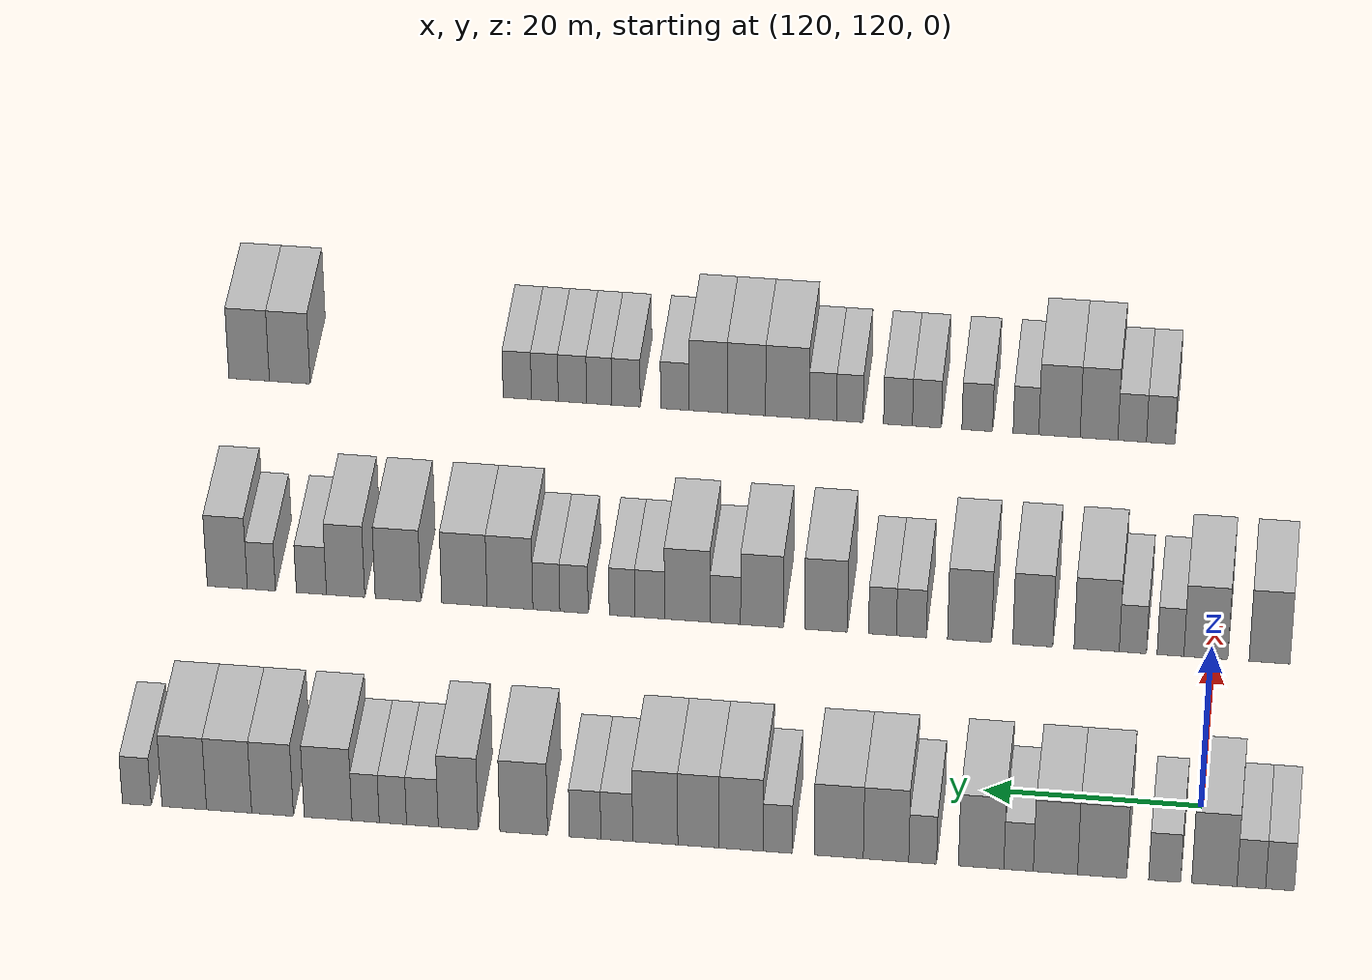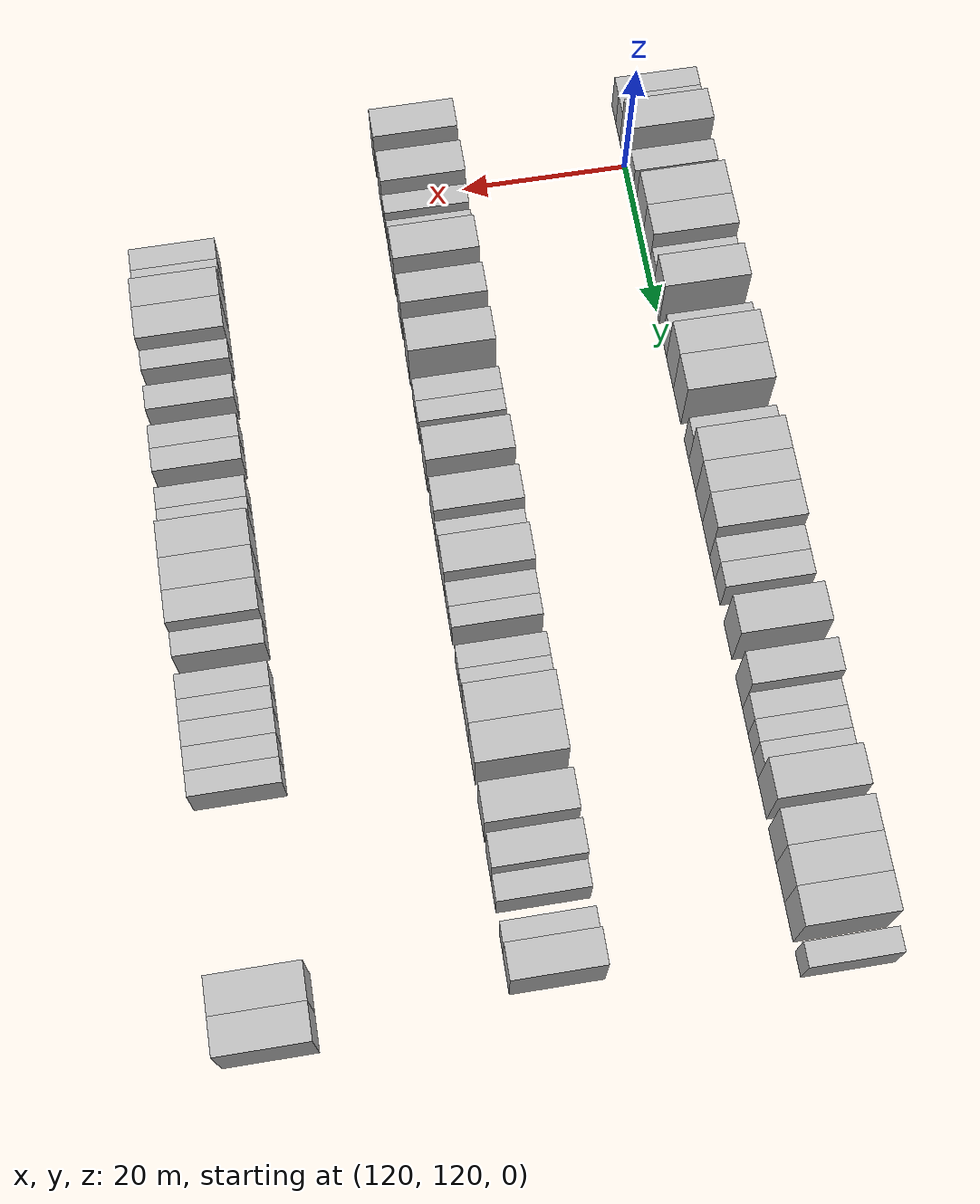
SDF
<sdf version="1.6">
 <world name="default">
  <model name="building_830">
   <static>1</static>
   <pose>115.0000 112.4151 0 0.000000 0.000000 0.000000</pose>
   <link name="link">
    <pose>0 0 3.00 0 0 0</pose>
    <collision name="collision"><geometry><box><size>10.0000 2.5968 6.0000</size></box></geometry></collision>
    <visual name="visual">
     <cast_shadows>0</cast_shadows>
     <geometry><box><size>10.0000 2.5968 6.0000</size></box></geometry>
     <material>
      <script>
       <uri>model://HANNAS_wall/materials/scripts</uri>
       <uri>model://HANNAS_wall/materials/textures</uri>
       <name>vrc/HANNAS_wall</name>
      </script>
     </material>
    </visual>
   </link>
  </model>
  <model name="building_831">
   <static>1</static>
   <pose>115.0000 115.0126 0 0.000000 0.000000 0.000000</pose>
   <link name="link">
    <pose>0 0 3.00 0 0 0</pose>
    <collision name="collision"><geometry><box><size>10.0000 2.5980 6.0000</size></box></geometry></collision>
    <visual name="visual">
     <cast_shadows>0</cast_shadows>
     <geometry><box><size>10.0000 2.5980 6.0000</size></box></geometry>
     <material>
      <script>
       <uri>model://HANNAS_wall/materials/scripts</uri>
       <uri>model://HANNAS_wall/materials/textures</uri>
       <name>vrc/HANNAS_wall</name>
      </script>
     </material>
    </visual>
   </link>
  </model>
  <model name="building_832">
   <static>1</static>
   <pose>115.0000 118.3584 0 0.000000 0.000000 0.000000</pose>
   <link name="link">
    <pose>0 0 4.50 0 0 0</pose>
    <collision name="collision"><geometry><box><size>10.0000 4.0936 9.0000</size></box></geometry></collision>
    <visual name="visual">
     <cast_shadows>0</cast_shadows>
     <geometry><box><size>10.0000 4.0936 9.0000</size></box></geometry>
     <material>
      <script>
       <uri>model://HANNAS_wall/materials/scripts</uri>
       <uri>model://HANNAS_wall/materials/textures</uri>
       <name>vrc/HANNAS_wall</name>
      </script>
     </material>
    </visual>
   </link>
  </model>
  <model name="building_833">
   <static>1</static>
   <pose>115.0000 122.8574 0 0.000000 0.000000 0.000000</pose>
   <link name="link">
    <pose>0 0 3.00 0 0 0</pose>
    <collision name="collision"><geometry><box><size>10.0000 2.9042 6.0000</size></box></geometry></collision>
    <visual name="visual">
     <cast_shadows>0</cast_shadows>
     <geometry><box><size>10.0000 2.9042 6.0000</size></box></geometry>
     <material>
      <script>
       <uri>model://HANNAS_wall/materials/scripts</uri>
       <uri>model://HANNAS_wall/materials/textures</uri>
       <name>vrc/HANNAS_wall</name>
      </script>
     </material>
    </visual>
   </link>
  </model>
  <model name="building_834">
   <static>1</static>
   <pose>115.0000 128.5365 0 0.000000 0.000000 0.000000</pose>
   <link name="link">
    <pose>0 0 4.50 0 0 0</pose>
    <collision name="collision"><geometry><box><size>10.0000 4.4541 9.0000</size></box></geometry></collision>
    <visual name="visual">
     <cast_shadows>0</cast_shadows>
     <geometry><box><size>10.0000 4.4541 9.0000</size></box></geometry>
     <material>
      <script>
       <uri>model://HANNAS_wall/materials/scripts</uri>
       <uri>model://HANNAS_wall/materials/textures</uri>
       <name>vrc/HANNAS_wall</name>
      </script>
     </material>
    </visual>
   </link>
  </model>
  <model name="building_835">
   <static>1</static>
   <pose>115.0000 132.7751 0 0.000000 0.000000 0.000000</pose>
   <link name="link">
    <pose>0 0 4.50 0 0 0</pose>
    <collision name="collision"><geometry><box><size>10.0000 4.0231 9.0000</size></box></geometry></collision>
    <visual name="visual">
     <cast_shadows>0</cast_shadows>
     <geometry><box><size>10.0000 4.0231 9.0000</size></box></geometry>
     <material>
      <script>
       <uri>model://HANNAS_wall/materials/scripts</uri>
       <uri>model://HANNAS_wall/materials/textures</uri>
       <name>vrc/HANNAS_wall</name>
      </script>
     </material>
    </visual>
   </link>
  </model>
  <model name="building_836">
   <static>1</static>
   <pose>115.0000 136.1300 0 0.000000 0.000000 0.000000</pose>
   <link name="link">
    <pose>0 0 3.00 0 0 0</pose>
    <collision name="collision"><geometry><box><size>10.0000 2.6866 6.0000</size></box></geometry></collision>
    <visual name="visual">
     <cast_shadows>0</cast_shadows>
     <geometry><box><size>10.0000 2.6866 6.0000</size></box></geometry>
     <material>
      <script>
       <uri>model://HANNAS_wall/materials/scripts</uri>
       <uri>model://HANNAS_wall/materials/textures</uri>
       <name>vrc/HANNAS_wall</name>
      </script>
     </material>
    </visual>
   </link>
  </model>
  <model name="building_837">
   <static>1</static>
   <pose>115.0000 139.5340 0 0.000000 0.000000 0.000000</pose>
   <link name="link">
    <pose>0 0 4.50 0 0 0</pose>
    <collision name="collision"><geometry><box><size>10.0000 4.1214 9.0000</size></box></geometry></collision>
    <visual name="visual">
     <cast_shadows>0</cast_shadows>
     <geometry><box><size>10.0000 4.1214 9.0000</size></box></geometry>
     <material>
      <script>
       <uri>model://HANNAS_wall/materials/scripts</uri>
       <uri>model://HANNAS_wall/materials/textures</uri>
       <name>vrc/HANNAS_wall</name>
      </script>
     </material>
    </visual>
   </link>
  </model>
  <model name="building_838">
   <static>1</static>
   <pose>115.0000 144.8630 0 0.000000 0.000000 0.000000</pose>
   <link name="link">
    <pose>0 0 3.00 0 0 0</pose>
    <collision name="collision"><geometry><box><size>10.0000 2.5366 6.0000</size></box></geometry></collision>
    <visual name="visual">
     <cast_shadows>0</cast_shadows>
     <geometry><box><size>10.0000 2.5366 6.0000</size></box></geometry>
     <material>
      <script>
       <uri>model://HANNAS_wall/materials/scripts</uri>
       <uri>model://HANNAS_wall/materials/textures</uri>
       <name>vrc/HANNAS_wall</name>
      </script>
     </material>
    </visual>
   </link>
  </model>
  <model name="building_839">
   <static>1</static>
   <pose>115.0000 148.2027 0 0.000000 0.000000 0.000000</pose>
   <link name="link">
    <pose>0 0 4.50 0 0 0</pose>
    <collision name="collision"><geometry><box><size>10.0000 4.1428 9.0000</size></box></geometry></collision>
    <visual name="visual">
     <cast_shadows>0</cast_shadows>
     <geometry><box><size>10.0000 4.1428 9.0000</size></box></geometry>
     <material>
      <script>
       <uri>model://HANNAS_wall/materials/scripts</uri>
       <uri>model://HANNAS_wall/materials/textures</uri>
       <name>vrc/HANNAS_wall</name>
      </script>
     </material>
    </visual>
   </link>
  </model>
  <model name="building_840">
   <static>1</static>
   <pose>115.0000 152.5198 0 0.000000 0.000000 0.000000</pose>
   <link name="link">
    <pose>0 0 4.50 0 0 0</pose>
    <collision name="collision"><geometry><box><size>10.0000 4.4913 9.0000</size></box></geometry></collision>
    <visual name="visual">
     <cast_shadows>0</cast_shadows>
     <geometry><box><size>10.0000 4.4913 9.0000</size></box></geometry>
     <material>
      <script>
       <uri>model://HANNAS_wall/materials/scripts</uri>
       <uri>model://HANNAS_wall/materials/textures</uri>
       <name>vrc/HANNAS_wall</name>
      </script>
     </material>
    </visual>
   </link>
  </model>
  <model name="building_841">
   <static>1</static>
   <pose>115.0000 158.0987 0 0.000000 0.000000 0.000000</pose>
   <link name="link">
    <pose>0 0 3.00 0 0 0</pose>
    <collision name="collision"><geometry><box><size>10.0000 2.6665 6.0000</size></box></geometry></collision>
    <visual name="visual">
     <cast_shadows>0</cast_shadows>
     <geometry><box><size>10.0000 2.6665 6.0000</size></box></geometry>
     <material>
      <script>
       <uri>model://HANNAS_wall/materials/scripts</uri>
       <uri>model://HANNAS_wall/materials/textures</uri>
       <name>vrc/HANNAS_wall</name>
      </script>
     </material>
    </visual>
   </link>
  </model>
  <model name="building_842">
   <static>1</static>
   <pose>115.0000 161.4385 0 0.000000 0.000000 0.000000</pose>
   <link name="link">
    <pose>0 0 4.50 0 0 0</pose>
    <collision name="collision"><geometry><box><size>10.0000 4.0131 9.0000</size></box></geometry></collision>
    <visual name="visual">
     <cast_shadows>0</cast_shadows>
     <geometry><box><size>10.0000 4.0131 9.0000</size></box></geometry>
     <material>
      <script>
       <uri>model://HANNAS_wall/materials/scripts</uri>
       <uri>model://HANNAS_wall/materials/textures</uri>
       <name>vrc/HANNAS_wall</name>
      </script>
     </material>
    </visual>
   </link>
  </model>
  <model name="building_843">
   <static>1</static>
   <pose>115.0000 165.3426 0 0.000000 0.000000 0.000000</pose>
   <link name="link">
    <pose>0 0 4.50 0 0 0</pose>
    <collision name="collision"><geometry><box><size>10.0000 3.7951 9.0000</size></box></geometry></collision>
    <visual name="visual">
     <cast_shadows>0</cast_shadows>
     <geometry><box><size>10.0000 3.7951 9.0000</size></box></geometry>
     <material>
      <script>
       <uri>model://HANNAS_wall/materials/scripts</uri>
       <uri>model://HANNAS_wall/materials/textures</uri>
       <name>vrc/HANNAS_wall</name>
      </script>
     </material>
    </visual>
   </link>
  </model>
  <model name="building_844">
   <static>1</static>
   <pose>115.0000 169.3079 0 0.000000 0.000000 0.000000</pose>
   <link name="link">
    <pose>0 0 4.50 0 0 0</pose>
    <collision name="collision"><geometry><box><size>10.0000 4.1355 9.0000</size></box></geometry></collision>
    <visual name="visual">
     <cast_shadows>0</cast_shadows>
     <geometry><box><size>10.0000 4.1355 9.0000</size></box></geometry>
     <material>
      <script>
       <uri>model://HANNAS_wall/materials/scripts</uri>
       <uri>model://HANNAS_wall/materials/textures</uri>
       <name>vrc/HANNAS_wall</name>
      </script>
     </material>
    </visual>
   </link>
  </model>
  <model name="building_845">
   <static>1</static>
   <pose>115.0000 172.8383 0 0.000000 0.000000 0.000000</pose>
   <link name="link">
    <pose>0 0 3.00 0 0 0</pose>
    <collision name="collision"><geometry><box><size>10.0000 2.9253 6.0000</size></box></geometry></collision>
    <visual name="visual">
     <cast_shadows>0</cast_shadows>
     <geometry><box><size>10.0000 2.9253 6.0000</size></box></geometry>
     <material>
      <script>
       <uri>model://HANNAS_wall/materials/scripts</uri>
       <uri>model://HANNAS_wall/materials/textures</uri>
       <name>vrc/HANNAS_wall</name>
      </script>
     </material>
    </visual>
   </link>
  </model>
  <model name="building_846">
   <static>1</static>
   <pose>115.0000 175.7460 0 0.000000 0.000000 0.000000</pose>
   <link name="link">
    <pose>0 0 3.00 0 0 0</pose>
    <collision name="collision"><geometry><box><size>10.0000 2.8901 6.0000</size></box></geometry></collision>
    <visual name="visual">
     <cast_shadows>0</cast_shadows>
     <geometry><box><size>10.0000 2.8901 6.0000</size></box></geometry>
     <material>
      <script>
       <uri>model://HANNAS_wall/materials/scripts</uri>
       <uri>model://HANNAS_wall/materials/textures</uri>
       <name>vrc/HANNAS_wall</name>
      </script>
     </material>
    </visual>
   </link>
  </model>
  <model name="building_847">
   <static>1</static>
   <pose>115.0000 181.3854 0 0.000000 0.000000 0.000000</pose>
   <link name="link">
    <pose>0 0 4.50 0 0 0</pose>
    <collision name="collision"><geometry><box><size>10.0000 4.3888 9.0000</size></box></geometry></collision>
    <visual name="visual">
     <cast_shadows>0</cast_shadows>
     <geometry><box><size>10.0000 4.3888 9.0000</size></box></geometry>
     <material>
      <script>
       <uri>model://HANNAS_wall/materials/scripts</uri>
       <uri>model://HANNAS_wall/materials/textures</uri>
       <name>vrc/HANNAS_wall</name>
      </script>
     </material>
    </visual>
   </link>
  </model>
  <model name="building_848">
   <static>1</static>
   <pose>115.0000 187.4157 0 0.000000 0.000000 0.000000</pose>
   <link name="link">
    <pose>0 0 4.50 0 0 0</pose>
    <collision name="collision"><geometry><box><size>10.0000 3.6717 9.0000</size></box></geometry></collision>
    <visual name="visual">
     <cast_shadows>0</cast_shadows>
     <geometry><box><size>10.0000 3.6717 9.0000</size></box></geometry>
     <material>
      <script>
       <uri>model://HANNAS_wall/materials/scripts</uri>
       <uri>model://HANNAS_wall/materials/textures</uri>
       <name>vrc/HANNAS_wall</name>
      </script>
     </material>
    </visual>
   </link>
  </model>
  <model name="building_849">
   <static>1</static>
   <pose>115.0000 190.7142 0 0.000000 0.000000 0.000000</pose>
   <link name="link">
    <pose>0 0 3.00 0 0 0</pose>
    <collision name="collision"><geometry><box><size>10.0000 2.9254 6.0000</size></box></geometry></collision>
    <visual name="visual">
     <cast_shadows>0</cast_shadows>
     <geometry><box><size>10.0000 2.9254 6.0000</size></box></geometry>
     <material>
      <script>
       <uri>model://HANNAS_wall/materials/scripts</uri>
       <uri>model://HANNAS_wall/materials/textures</uri>
       <name>vrc/HANNAS_wall</name>
      </script>
     </material>
    </visual>
   </link>
  </model>
  <model name="building_850">
   <static>1</static>
   <pose>115.0000 193.4355 0 0.000000 0.000000 0.000000</pose>
   <link name="link">
    <pose>0 0 3.00 0 0 0</pose>
    <collision name="collision"><geometry><box><size>10.0000 2.5171 6.0000</size></box></geometry></collision>
    <visual name="visual">
     <cast_shadows>0</cast_shadows>
     <geometry><box><size>10.0000 2.5171 6.0000</size></box></geometry>
     <material>
      <script>
       <uri>model://HANNAS_wall/materials/scripts</uri>
       <uri>model://HANNAS_wall/materials/textures</uri>
       <name>vrc/HANNAS_wall</name>
      </script>
     </material>
    </visual>
   </link>
  </model>
  <model name="building_851">
   <static>1</static>
   <pose>115.0000 195.9529 0 0.000000 0.000000 0.000000</pose>
   <link name="link">
    <pose>0 0 3.00 0 0 0</pose>
    <collision name="collision"><geometry><box><size>10.0000 2.5176 6.0000</size></box></geometry></collision>
    <visual name="visual">
     <cast_shadows>0</cast_shadows>
     <geometry><box><size>10.0000 2.5176 6.0000</size></box></geometry>
     <material>
      <script>
       <uri>model://HANNAS_wall/materials/scripts</uri>
       <uri>model://HANNAS_wall/materials/textures</uri>
       <name>vrc/HANNAS_wall</name>
      </script>
     </material>
    </visual>
   </link>
  </model>
  <model name="building_852">
   <static>1</static>
   <pose>115.0000 199.4155 0 0.000000 0.000000 0.000000</pose>
   <link name="link">
    <pose>0 0 4.50 0 0 0</pose>
    <collision name="collision"><geometry><box><size>10.0000 4.4075 9.0000</size></box></geometry></collision>
    <visual name="visual">
     <cast_shadows>0</cast_shadows>
     <geometry><box><size>10.0000 4.4075 9.0000</size></box></geometry>
     <material>
      <script>
       <uri>model://HANNAS_wall/materials/scripts</uri>
       <uri>model://HANNAS_wall/materials/textures</uri>
       <name>vrc/HANNAS_wall</name>
      </script>
     </material>
    </visual>
   </link>
  </model>
  <model name="building_853">
   <static>1</static>
   <pose>115.0000 204.5489 0 0.000000 0.000000 0.000000</pose>
   <link name="link">
    <pose>0 0 4.50 0 0 0</pose>
    <collision name="collision"><geometry><box><size>10.0000 3.8593 9.0000</size></box></geometry></collision>
    <visual name="visual">
     <cast_shadows>0</cast_shadows>
     <geometry><box><size>10.0000 3.8593 9.0000</size></box></geometry>
     <material>
      <script>
       <uri>model://HANNAS_wall/materials/scripts</uri>
       <uri>model://HANNAS_wall/materials/textures</uri>
       <name>vrc/HANNAS_wall</name>
      </script>
     </material>
    </visual>
   </link>
  </model>
  <model name="building_854">
   <static>1</static>
   <pose>115.0000 208.5659 0 0.000000 0.000000 0.000000</pose>
   <link name="link">
    <pose>0 0 4.50 0 0 0</pose>
    <collision name="collision"><geometry><box><size>10.0000 4.1747 9.0000</size></box></geometry></collision>
    <visual name="visual">
     <cast_shadows>0</cast_shadows>
     <geometry><box><size>10.0000 4.1747 9.0000</size></box></geometry>
     <material>
      <script>
       <uri>model://HANNAS_wall/materials/scripts</uri>
       <uri>model://HANNAS_wall/materials/textures</uri>
       <name>vrc/HANNAS_wall</name>
      </script>
     </material>
    </visual>
   </link>
  </model>
  <model name="building_855">
   <static>1</static>
   <pose>115.0000 212.7169 0 0.000000 0.000000 0.000000</pose>
   <link name="link">
    <pose>0 0 4.50 0 0 0</pose>
    <collision name="collision"><geometry><box><size>10.0000 4.1275 9.0000</size></box></geometry></collision>
    <visual name="visual">
     <cast_shadows>0</cast_shadows>
     <geometry><box><size>10.0000 4.1275 9.0000</size></box></geometry>
     <material>
      <script>
       <uri>model://HANNAS_wall/materials/scripts</uri>
       <uri>model://HANNAS_wall/materials/textures</uri>
       <name>vrc/HANNAS_wall</name>
      </script>
     </material>
    </visual>
   </link>
  </model>
  <model name="building_856">
   <static>1</static>
   <pose>115.0000 217.1145 0 0.000000 0.000000 0.000000</pose>
   <link name="link">
    <pose>0 0 3.00 0 0 0</pose>
    <collision name="collision"><geometry><box><size>10.0000 2.6675 6.0000</size></box></geometry></collision>
    <visual name="visual">
     <cast_shadows>0</cast_shadows>
     <geometry><box><size>10.0000 2.6675 6.0000</size></box></geometry>
     <material>
      <script>
       <uri>model://HANNAS_wall/materials/scripts</uri>
       <uri>model://HANNAS_wall/materials/textures</uri>
       <name>vrc/HANNAS_wall</name>
      </script>
     </material>
    </visual>
   </link>
  </model>
  <model name="building_1067">
   <static>1</static>
   <pose>145.0000 114.8016 0 0.000000 0.000000 0.000000</pose>
   <link name="link">
    <pose>0 0 4.50 0 0 0</pose>
    <collision name="collision"><geometry><box><size>10.0000 3.8202 9.0000</size></box></geometry></collision>
    <visual name="visual">
     <cast_shadows>0</cast_shadows>
     <geometry><box><size>10.0000 3.8202 9.0000</size></box></geometry>
     <material>
      <script>
       <uri>model://HANNAS_wall/materials/scripts</uri>
       <uri>model://HANNAS_wall/materials/textures</uri>
       <name>vrc/HANNAS_wall</name>
      </script>
     </material>
    </visual>
   </link>
  </model>
  <model name="building_1068">
   <static>1</static>
   <pose>145.0000 120.7681 0 0.000000 0.000000 0.000000</pose>
   <link name="link">
    <pose>0 0 4.50 0 0 0</pose>
    <collision name="collision"><geometry><box><size>10.0000 4.1128 9.0000</size></box></geometry></collision>
    <visual name="visual">
     <cast_shadows>0</cast_shadows>
     <geometry><box><size>10.0000 4.1128 9.0000</size></box></geometry>
     <material>
      <script>
       <uri>model://HANNAS_wall/materials/scripts</uri>
       <uri>model://HANNAS_wall/materials/textures</uri>
       <name>vrc/HANNAS_wall</name>
      </script>
     </material>
    </visual>
   </link>
  </model>
  <model name="building_1069">
   <static>1</static>
   <pose>145.0000 124.0799 0 0.000000 0.000000 0.000000</pose>
   <link name="link">
    <pose>0 0 3.00 0 0 0</pose>
    <collision name="collision"><geometry><box><size>10.0000 2.5108 6.0000</size></box></geometry></collision>
    <visual name="visual">
     <cast_shadows>0</cast_shadows>
     <geometry><box><size>10.0000 2.5108 6.0000</size></box></geometry>
     <material>
      <script>
       <uri>model://HANNAS_wall/materials/scripts</uri>
       <uri>model://HANNAS_wall/materials/textures</uri>
       <name>vrc/HANNAS_wall</name>
      </script>
     </material>
    </visual>
   </link>
  </model>
  <model name="building_1070">
   <static>1</static>
   <pose>145.0000 127.6143 0 0.000000 0.000000 0.000000</pose>
   <link name="link">
    <pose>0 0 3.00 0 0 0</pose>
    <collision name="collision"><geometry><box><size>10.0000 2.5578 6.0000</size></box></geometry></collision>
    <visual name="visual">
     <cast_shadows>0</cast_shadows>
     <geometry><box><size>10.0000 2.5578 6.0000</size></box></geometry>
     <material>
      <script>
       <uri>model://HANNAS_wall/materials/scripts</uri>
       <uri>model://HANNAS_wall/materials/textures</uri>
       <name>vrc/HANNAS_wall</name>
      </script>
     </material>
    </visual>
   </link>
  </model>
  <model name="building_1071">
   <static>1</static>
   <pose>145.0000 131.0149 0 0.000000 0.000000 0.000000</pose>
   <link name="link">
    <pose>0 0 4.50 0 0 0</pose>
    <collision name="collision"><geometry><box><size>10.0000 4.2435 9.0000</size></box></geometry></collision>
    <visual name="visual">
     <cast_shadows>0</cast_shadows>
     <geometry><box><size>10.0000 4.2435 9.0000</size></box></geometry>
     <material>
      <script>
       <uri>model://HANNAS_wall/materials/scripts</uri>
       <uri>model://HANNAS_wall/materials/textures</uri>
       <name>vrc/HANNAS_wall</name>
      </script>
     </material>
    </visual>
   </link>
  </model>
  <model name="building_1072">
   <static>1</static>
   <pose>145.0000 137.0204 0 0.000000 0.000000 0.000000</pose>
   <link name="link">
    <pose>0 0 4.50 0 0 0</pose>
    <collision name="collision"><geometry><box><size>10.0000 3.7675 9.0000</size></box></geometry></collision>
    <visual name="visual">
     <cast_shadows>0</cast_shadows>
     <geometry><box><size>10.0000 3.7675 9.0000</size></box></geometry>
     <material>
      <script>
       <uri>model://HANNAS_wall/materials/scripts</uri>
       <uri>model://HANNAS_wall/materials/textures</uri>
       <name>vrc/HANNAS_wall</name>
      </script>
     </material>
    </visual>
   </link>
  </model>
  <model name="building_1073">
   <static>1</static>
   <pose>145.0000 142.9776 0 0.000000 0.000000 0.000000</pose>
   <link name="link">
    <pose>0 0 4.50 0 0 0</pose>
    <collision name="collision"><geometry><box><size>10.0000 4.1468 9.0000</size></box></geometry></collision>
    <visual name="visual">
     <cast_shadows>0</cast_shadows>
     <geometry><box><size>10.0000 4.1468 9.0000</size></box></geometry>
     <material>
      <script>
       <uri>model://HANNAS_wall/materials/scripts</uri>
       <uri>model://HANNAS_wall/materials/textures</uri>
       <name>vrc/HANNAS_wall</name>
      </script>
     </material>
    </visual>
   </link>
  </model>
  <model name="building_1074">
   <static>1</static>
   <pose>145.0000 148.4596 0 0.000000 0.000000 0.000000</pose>
   <link name="link">
    <pose>0 0 3.00 0 0 0</pose>
    <collision name="collision"><geometry><box><size>10.0000 2.8173 6.0000</size></box></geometry></collision>
    <visual name="visual">
     <cast_shadows>0</cast_shadows>
     <geometry><box><size>10.0000 2.8173 6.0000</size></box></geometry>
     <material>
      <script>
       <uri>model://HANNAS_wall/materials/scripts</uri>
       <uri>model://HANNAS_wall/materials/textures</uri>
       <name>vrc/HANNAS_wall</name>
      </script>
     </material>
    </visual>
   </link>
  </model>
  <model name="building_1075">
   <static>1</static>
   <pose>145.0000 151.1813 0 0.000000 0.000000 0.000000</pose>
   <link name="link">
    <pose>0 0 3.00 0 0 0</pose>
    <collision name="collision"><geometry><box><size>10.0000 2.6261 6.0000</size></box></geometry></collision>
    <visual name="visual">
     <cast_shadows>0</cast_shadows>
     <geometry><box><size>10.0000 2.6261 6.0000</size></box></geometry>
     <material>
      <script>
       <uri>model://HANNAS_wall/materials/scripts</uri>
       <uri>model://HANNAS_wall/materials/textures</uri>
       <name>vrc/HANNAS_wall</name>
      </script>
     </material>
    </visual>
   </link>
  </model>
  <model name="building_1076">
   <static>1</static>
   <pose>145.0000 156.5219 0 0.000000 0.000000 0.000000</pose>
   <link name="link">
    <pose>0 0 4.50 0 0 0</pose>
    <collision name="collision"><geometry><box><size>10.0000 4.0551 9.0000</size></box></geometry></collision>
    <visual name="visual">
     <cast_shadows>0</cast_shadows>
     <geometry><box><size>10.0000 4.0551 9.0000</size></box></geometry>
     <material>
      <script>
       <uri>model://HANNAS_wall/materials/scripts</uri>
       <uri>model://HANNAS_wall/materials/textures</uri>
       <name>vrc/HANNAS_wall</name>
      </script>
     </material>
    </visual>
   </link>
  </model>
  <model name="building_1077">
   <static>1</static>
   <pose>145.0000 162.5756 0 0.000000 0.000000 0.000000</pose>
   <link name="link">
    <pose>0 0 4.50 0 0 0</pose>
    <collision name="collision"><geometry><box><size>10.0000 4.0522 9.0000</size></box></geometry></collision>
    <visual name="visual">
     <cast_shadows>0</cast_shadows>
     <geometry><box><size>10.0000 4.0522 9.0000</size></box></geometry>
     <material>
      <script>
       <uri>model://HANNAS_wall/materials/scripts</uri>
       <uri>model://HANNAS_wall/materials/textures</uri>
       <name>vrc/HANNAS_wall</name>
      </script>
     </material>
    </visual>
   </link>
  </model>
  <model name="building_1078">
   <static>1</static>
   <pose>145.0000 166.0456 0 0.000000 0.000000 0.000000</pose>
   <link name="link">
    <pose>0 0 3.00 0 0 0</pose>
    <collision name="collision"><geometry><box><size>10.0000 2.8878 6.0000</size></box></geometry></collision>
    <visual name="visual">
     <cast_shadows>0</cast_shadows>
     <geometry><box><size>10.0000 2.8878 6.0000</size></box></geometry>
     <material>
      <script>
       <uri>model://HANNAS_wall/materials/scripts</uri>
       <uri>model://HANNAS_wall/materials/textures</uri>
       <name>vrc/HANNAS_wall</name>
      </script>
     </material>
    </visual>
   </link>
  </model>
  <model name="building_1079">
   <static>1</static>
   <pose>145.0000 169.6446 0 0.000000 0.000000 0.000000</pose>
   <link name="link">
    <pose>0 0 4.50 0 0 0</pose>
    <collision name="collision"><geometry><box><size>10.0000 4.3102 9.0000</size></box></geometry></collision>
    <visual name="visual">
     <cast_shadows>0</cast_shadows>
     <geometry><box><size>10.0000 4.3102 9.0000</size></box></geometry>
     <material>
      <script>
       <uri>model://HANNAS_wall/materials/scripts</uri>
       <uri>model://HANNAS_wall/materials/textures</uri>
       <name>vrc/HANNAS_wall</name>
      </script>
     </material>
    </visual>
   </link>
  </model>
  <model name="building_1080">
   <static>1</static>
   <pose>145.0000 173.2105 0 0.000000 0.000000 0.000000</pose>
   <link name="link">
    <pose>0 0 3.00 0 0 0</pose>
    <collision name="collision"><geometry><box><size>10.0000 2.8216 6.0000</size></box></geometry></collision>
    <visual name="visual">
     <cast_shadows>0</cast_shadows>
     <geometry><box><size>10.0000 2.8216 6.0000</size></box></geometry>
     <material>
      <script>
       <uri>model://HANNAS_wall/materials/scripts</uri>
       <uri>model://HANNAS_wall/materials/textures</uri>
       <name>vrc/HANNAS_wall</name>
      </script>
     </material>
    </visual>
   </link>
  </model>
  <model name="building_1081">
   <static>1</static>
   <pose>145.0000 175.8373 0 0.000000 0.000000 0.000000</pose>
   <link name="link">
    <pose>0 0 3.00 0 0 0</pose>
    <collision name="collision"><geometry><box><size>10.0000 2.4322 6.0000</size></box></geometry></collision>
    <visual name="visual">
     <cast_shadows>0</cast_shadows>
     <geometry><box><size>10.0000 2.4322 6.0000</size></box></geometry>
     <material>
      <script>
       <uri>model://HANNAS_wall/materials/scripts</uri>
       <uri>model://HANNAS_wall/materials/textures</uri>
       <name>vrc/HANNAS_wall</name>
      </script>
     </material>
    </visual>
   </link>
  </model>
  <model name="building_1082">
   <static>1</static>
   <pose>145.0000 180.4018 0 0.000000 0.000000 0.000000</pose>
   <link name="link">
    <pose>0 0 3.00 0 0 0</pose>
    <collision name="collision"><geometry><box><size>10.0000 2.6967 6.0000</size></box></geometry></collision>
    <visual name="visual">
     <cast_shadows>0</cast_shadows>
     <geometry><box><size>10.0000 2.6967 6.0000</size></box></geometry>
     <material>
      <script>
       <uri>model://HANNAS_wall/materials/scripts</uri>
       <uri>model://HANNAS_wall/materials/textures</uri>
       <name>vrc/HANNAS_wall</name>
      </script>
     </material>
    </visual>
   </link>
  </model>
  <model name="building_1083">
   <static>1</static>
   <pose>145.0000 183.0322 0 0.000000 0.000000 0.000000</pose>
   <link name="link">
    <pose>0 0 3.00 0 0 0</pose>
    <collision name="collision"><geometry><box><size>10.0000 2.5641 6.0000</size></box></geometry></collision>
    <visual name="visual">
     <cast_shadows>0</cast_shadows>
     <geometry><box><size>10.0000 2.5641 6.0000</size></box></geometry>
     <material>
      <script>
       <uri>model://HANNAS_wall/materials/scripts</uri>
       <uri>model://HANNAS_wall/materials/textures</uri>
       <name>vrc/HANNAS_wall</name>
      </script>
     </material>
    </visual>
   </link>
  </model>
  <model name="building_1084">
   <static>1</static>
   <pose>145.0000 186.4864 0 0.000000 0.000000 0.000000</pose>
   <link name="link">
    <pose>0 0 4.50 0 0 0</pose>
    <collision name="collision"><geometry><box><size>10.0000 4.3444 9.0000</size></box></geometry></collision>
    <visual name="visual">
     <cast_shadows>0</cast_shadows>
     <geometry><box><size>10.0000 4.3444 9.0000</size></box></geometry>
     <material>
      <script>
       <uri>model://HANNAS_wall/materials/scripts</uri>
       <uri>model://HANNAS_wall/materials/textures</uri>
       <name>vrc/HANNAS_wall</name>
      </script>
     </material>
    </visual>
   </link>
  </model>
  <model name="building_1085">
   <static>1</static>
   <pose>145.0000 190.8214 0 0.000000 0.000000 0.000000</pose>
   <link name="link">
    <pose>0 0 4.50 0 0 0</pose>
    <collision name="collision"><geometry><box><size>10.0000 4.3256 9.0000</size></box></geometry></collision>
    <visual name="visual">
     <cast_shadows>0</cast_shadows>
     <geometry><box><size>10.0000 4.3256 9.0000</size></box></geometry>
     <material>
      <script>
       <uri>model://HANNAS_wall/materials/scripts</uri>
       <uri>model://HANNAS_wall/materials/textures</uri>
       <name>vrc/HANNAS_wall</name>
      </script>
     </material>
    </visual>
   </link>
  </model>
  <model name="building_1086">
   <static>1</static>
   <pose>145.0000 197.1586 0 0.000000 0.000000 0.000000</pose>
   <link name="link">
    <pose>0 0 4.50 0 0 0</pose>
    <collision name="collision"><geometry><box><size>10.0000 4.3487 9.0000</size></box></geometry></collision>
    <visual name="visual">
     <cast_shadows>0</cast_shadows>
     <geometry><box><size>10.0000 4.3487 9.0000</size></box></geometry>
     <material>
      <script>
       <uri>model://HANNAS_wall/materials/scripts</uri>
       <uri>model://HANNAS_wall/materials/textures</uri>
       <name>vrc/HANNAS_wall</name>
      </script>
     </material>
    </visual>
   </link>
  </model>
  <model name="building_1087">
   <static>1</static>
   <pose>145.0000 202.1642 0 0.000000 0.000000 0.000000</pose>
   <link name="link">
    <pose>0 0 4.50 0 0 0</pose>
    <collision name="collision"><geometry><box><size>10.0000 3.6626 9.0000</size></box></geometry></collision>
    <visual name="visual">
     <cast_shadows>0</cast_shadows>
     <geometry><box><size>10.0000 3.6626 9.0000</size></box></geometry>
     <material>
      <script>
       <uri>model://HANNAS_wall/materials/scripts</uri>
       <uri>model://HANNAS_wall/materials/textures</uri>
       <name>vrc/HANNAS_wall</name>
      </script>
     </material>
    </visual>
   </link>
  </model>
  <model name="building_1088">
   <static>1</static>
   <pose>145.0000 205.4338 0 0.000000 0.000000 0.000000</pose>
   <link name="link">
    <pose>0 0 3.00 0 0 0</pose>
    <collision name="collision"><geometry><box><size>10.0000 2.8766 6.0000</size></box></geometry></collision>
    <visual name="visual">
     <cast_shadows>0</cast_shadows>
     <geometry><box><size>10.0000 2.8766 6.0000</size></box></geometry>
     <material>
      <script>
       <uri>model://HANNAS_wall/materials/scripts</uri>
       <uri>model://HANNAS_wall/materials/textures</uri>
       <name>vrc/HANNAS_wall</name>
      </script>
     </material>
    </visual>
   </link>
  </model>
  <model name="building_1089">
   <static>1</static>
   <pose>145.0000 210.2150 0 0.000000 0.000000 0.000000</pose>
   <link name="link">
    <pose>0 0 3.00 0 0 0</pose>
    <collision name="collision"><geometry><box><size>10.0000 2.6858 6.0000</size></box></geometry></collision>
    <visual name="visual">
     <cast_shadows>0</cast_shadows>
     <geometry><box><size>10.0000 2.6858 6.0000</size></box></geometry>
     <material>
      <script>
       <uri>model://HANNAS_wall/materials/scripts</uri>
       <uri>model://HANNAS_wall/materials/textures</uri>
       <name>vrc/HANNAS_wall</name>
      </script>
     </material>
    </visual>
   </link>
  </model>
  <model name="building_1090">
   <static>1</static>
   <pose>145.0000 213.4754 0 0.000000 0.000000 0.000000</pose>
   <link name="link">
    <pose>0 0 4.50 0 0 0</pose>
    <collision name="collision"><geometry><box><size>10.0000 3.8350 9.0000</size></box></geometry></collision>
    <visual name="visual">
     <cast_shadows>0</cast_shadows>
     <geometry><box><size>10.0000 3.8350 9.0000</size></box></geometry>
     <material>
      <script>
       <uri>model://HANNAS_wall/materials/scripts</uri>
       <uri>model://HANNAS_wall/materials/textures</uri>
       <name>vrc/HANNAS_wall</name>
      </script>
     </material>
    </visual>
   </link>
  </model>
  <model name="building_1291">
   <static>1</static>
   <pose>175.0000 126.7868 0 0.000000 0.000000 0.000000</pose>
   <link name="link">
    <pose>0 0 3.00 0 0 0</pose>
    <collision name="collision"><geometry><box><size>10.0000 2.7535 6.0000</size></box></geometry></collision>
    <visual name="visual">
     <cast_shadows>0</cast_shadows>
     <geometry><box><size>10.0000 2.7535 6.0000</size></box></geometry>
     <material>
      <script>
       <uri>model://HANNAS_wall/materials/scripts</uri>
       <uri>model://HANNAS_wall/materials/textures</uri>
       <name>vrc/HANNAS_wall</name>
      </script>
     </material>
    </visual>
   </link>
  </model>
  <model name="building_1292">
   <static>1</static>
   <pose>175.0000 129.5501 0 0.000000 0.000000 0.000000</pose>
   <link name="link">
    <pose>0 0 3.00 0 0 0</pose>
    <collision name="collision"><geometry><box><size>10.0000 2.7730 6.0000</size></box></geometry></collision>
    <visual name="visual">
     <cast_shadows>0</cast_shadows>
     <geometry><box><size>10.0000 2.7730 6.0000</size></box></geometry>
     <material>
      <script>
       <uri>model://HANNAS_wall/materials/scripts</uri>
       <uri>model://HANNAS_wall/materials/textures</uri>
       <name>vrc/HANNAS_wall</name>
      </script>
     </material>
    </visual>
   </link>
  </model>
  <model name="building_1293">
   <static>1</static>
   <pose>175.0000 132.7751 0 0.000000 0.000000 0.000000</pose>
   <link name="link">
    <pose>0 0 4.50 0 0 0</pose>
    <collision name="collision"><geometry><box><size>10.0000 3.6771 9.0000</size></box></geometry></collision>
    <visual name="visual">
     <cast_shadows>0</cast_shadows>
     <geometry><box><size>10.0000 3.6771 9.0000</size></box></geometry>
     <material>
      <script>
       <uri>model://HANNAS_wall/materials/scripts</uri>
       <uri>model://HANNAS_wall/materials/textures</uri>
       <name>vrc/HANNAS_wall</name>
      </script>
     </material>
    </visual>
   </link>
  </model>
  <model name="building_1294">
   <static>1</static>
   <pose>175.0000 136.6195 0 0.000000 0.000000 0.000000</pose>
   <link name="link">
    <pose>0 0 4.50 0 0 0</pose>
    <collision name="collision"><geometry><box><size>10.0000 4.0117 9.0000</size></box></geometry></collision>
    <visual name="visual">
     <cast_shadows>0</cast_shadows>
     <geometry><box><size>10.0000 4.0117 9.0000</size></box></geometry>
     <material>
      <script>
       <uri>model://HANNAS_wall/materials/scripts</uri>
       <uri>model://HANNAS_wall/materials/textures</uri>
       <name>vrc/HANNAS_wall</name>
      </script>
     </material>
    </visual>
   </link>
  </model>
  <model name="building_1295">
   <static>1</static>
   <pose>175.0000 139.8721 0 0.000000 0.000000 0.000000</pose>
   <link name="link">
    <pose>0 0 3.00 0 0 0</pose>
    <collision name="collision"><geometry><box><size>10.0000 2.4935 6.0000</size></box></geometry></collision>
    <visual name="visual">
     <cast_shadows>0</cast_shadows>
     <geometry><box><size>10.0000 2.4935 6.0000</size></box></geometry>
     <material>
      <script>
       <uri>model://HANNAS_wall/materials/scripts</uri>
       <uri>model://HANNAS_wall/materials/textures</uri>
       <name>vrc/HANNAS_wall</name>
      </script>
     </material>
    </visual>
   </link>
  </model>
  <model name="building_1296">
   <static>1</static>
   <pose>175.0000 144.6107 0 0.000000 0.000000 0.000000</pose>
   <link name="link">
    <pose>0 0 3.00 0 0 0</pose>
    <collision name="collision"><geometry><box><size>10.0000 2.9837 6.0000</size></box></geometry></collision>
    <visual name="visual">
     <cast_shadows>0</cast_shadows>
     <geometry><box><size>10.0000 2.9837 6.0000</size></box></geometry>
     <material>
      <script>
       <uri>model://HANNAS_wall/materials/scripts</uri>
       <uri>model://HANNAS_wall/materials/textures</uri>
       <name>vrc/HANNAS_wall</name>
      </script>
     </material>
    </visual>
   </link>
  </model>
  <model name="building_1297">
   <static>1</static>
   <pose>175.0000 149.5139 0 0.000000 0.000000 0.000000</pose>
   <link name="link">
    <pose>0 0 3.00 0 0 0</pose>
    <collision name="collision"><geometry><box><size>10.0000 2.8228 6.0000</size></box></geometry></collision>
    <visual name="visual">
     <cast_shadows>0</cast_shadows>
     <geometry><box><size>10.0000 2.8228 6.0000</size></box></geometry>
     <material>
      <script>
       <uri>model://HANNAS_wall/materials/scripts</uri>
       <uri>model://HANNAS_wall/materials/textures</uri>
       <name>vrc/HANNAS_wall</name>
      </script>
     </material>
    </visual>
   </link>
  </model>
  <model name="building_1298">
   <static>1</static>
   <pose>175.0000 152.3335 0 0.000000 0.000000 0.000000</pose>
   <link name="link">
    <pose>0 0 3.00 0 0 0</pose>
    <collision name="collision"><geometry><box><size>10.0000 2.8163 6.0000</size></box></geometry></collision>
    <visual name="visual">
     <cast_shadows>0</cast_shadows>
     <geometry><box><size>10.0000 2.8163 6.0000</size></box></geometry>
     <material>
      <script>
       <uri>model://HANNAS_wall/materials/scripts</uri>
       <uri>model://HANNAS_wall/materials/textures</uri>
       <name>vrc/HANNAS_wall</name>
      </script>
     </material>
    </visual>
   </link>
  </model>
  <model name="building_1299">
   <static>1</static>
   <pose>175.0000 157.0355 0 0.000000 0.000000 0.000000</pose>
   <link name="link">
    <pose>0 0 3.00 0 0 0</pose>
    <collision name="collision"><geometry><box><size>10.0000 2.5878 6.0000</size></box></geometry></collision>
    <visual name="visual">
     <cast_shadows>0</cast_shadows>
     <geometry><box><size>10.0000 2.5878 6.0000</size></box></geometry>
     <material>
      <script>
       <uri>model://HANNAS_wall/materials/scripts</uri>
       <uri>model://HANNAS_wall/materials/textures</uri>
       <name>vrc/HANNAS_wall</name>
      </script>
     </material>
    </visual>
   </link>
  </model>
  <model name="building_1300">
   <static>1</static>
   <pose>175.0000 159.6614 0 0.000000 0.000000 0.000000</pose>
   <link name="link">
    <pose>0 0 3.00 0 0 0</pose>
    <collision name="collision"><geometry><box><size>10.0000 2.6639 6.0000</size></box></geometry></collision>
    <visual name="visual">
     <cast_shadows>0</cast_shadows>
     <geometry><box><size>10.0000 2.6639 6.0000</size></box></geometry>
     <material>
      <script>
       <uri>model://HANNAS_wall/materials/scripts</uri>
       <uri>model://HANNAS_wall/materials/textures</uri>
       <name>vrc/HANNAS_wall</name>
      </script>
     </material>
    </visual>
   </link>
  </model>
  <model name="building_1301">
   <static>1</static>
   <pose>175.0000 163.1297 0 0.000000 0.000000 0.000000</pose>
   <link name="link">
    <pose>0 0 4.50 0 0 0</pose>
    <collision name="collision"><geometry><box><size>10.0000 4.2727 9.0000</size></box></geometry></collision>
    <visual name="visual">
     <cast_shadows>0</cast_shadows>
     <geometry><box><size>10.0000 4.2727 9.0000</size></box></geometry>
     <material>
      <script>
       <uri>model://HANNAS_wall/materials/scripts</uri>
       <uri>model://HANNAS_wall/materials/textures</uri>
       <name>vrc/HANNAS_wall</name>
      </script>
     </material>
    </visual>
   </link>
  </model>
  <model name="building_1302">
   <static>1</static>
   <pose>175.0000 167.1476 0 0.000000 0.000000 0.000000</pose>
   <link name="link">
    <pose>0 0 4.50 0 0 0</pose>
    <collision name="collision"><geometry><box><size>10.0000 3.7630 9.0000</size></box></geometry></collision>
    <visual name="visual">
     <cast_shadows>0</cast_shadows>
     <geometry><box><size>10.0000 3.7630 9.0000</size></box></geometry>
     <material>
      <script>
       <uri>model://HANNAS_wall/materials/scripts</uri>
       <uri>model://HANNAS_wall/materials/textures</uri>
       <name>vrc/HANNAS_wall</name>
      </script>
     </material>
    </visual>
   </link>
  </model>
  <model name="building_1303">
   <static>1</static>
   <pose>175.0000 170.8775 0 0.000000 0.000000 0.000000</pose>
   <link name="link">
    <pose>0 0 4.50 0 0 0</pose>
    <collision name="collision"><geometry><box><size>10.0000 3.6969 9.0000</size></box></geometry></collision>
    <visual name="visual">
     <cast_shadows>0</cast_shadows>
     <geometry><box><size>10.0000 3.6969 9.0000</size></box></geometry>
     <material>
      <script>
       <uri>model://HANNAS_wall/materials/scripts</uri>
       <uri>model://HANNAS_wall/materials/textures</uri>
       <name>vrc/HANNAS_wall</name>
      </script>
     </material>
    </visual>
   </link>
  </model>
  <model name="building_1304">
   <static>1</static>
   <pose>175.0000 174.1343 0 0.000000 0.000000 0.000000</pose>
   <link name="link">
    <pose>0 0 3.00 0 0 0</pose>
    <collision name="collision"><geometry><box><size>10.0000 2.8166 6.0000</size></box></geometry></collision>
    <visual name="visual">
     <cast_shadows>0</cast_shadows>
     <geometry><box><size>10.0000 2.8166 6.0000</size></box></geometry>
     <material>
      <script>
       <uri>model://HANNAS_wall/materials/scripts</uri>
       <uri>model://HANNAS_wall/materials/textures</uri>
       <name>vrc/HANNAS_wall</name>
      </script>
     </material>
    </visual>
   </link>
  </model>
  <model name="building_1305">
   <static>1</static>
   <pose>175.0000 178.9443 0 0.000000 0.000000 0.000000</pose>
   <link name="link">
    <pose>0 0 3.00 0 0 0</pose>
    <collision name="collision"><geometry><box><size>10.0000 2.8034 6.0000</size></box></geometry></collision>
    <visual name="visual">
     <cast_shadows>0</cast_shadows>
     <geometry><box><size>10.0000 2.8034 6.0000</size></box></geometry>
     <material>
      <script>
       <uri>model://HANNAS_wall/materials/scripts</uri>
       <uri>model://HANNAS_wall/materials/textures</uri>
       <name>vrc/HANNAS_wall</name>
      </script>
     </material>
    </visual>
   </link>
  </model>
  <model name="building_1306">
   <static>1</static>
   <pose>175.0000 181.5778 0 0.000000 0.000000 0.000000</pose>
   <link name="link">
    <pose>0 0 3.00 0 0 0</pose>
    <collision name="collision"><geometry><box><size>10.0000 2.4636 6.0000</size></box></geometry></collision>
    <visual name="visual">
     <cast_shadows>0</cast_shadows>
     <geometry><box><size>10.0000 2.4636 6.0000</size></box></geometry>
     <material>
      <script>
       <uri>model://HANNAS_wall/materials/scripts</uri>
       <uri>model://HANNAS_wall/materials/textures</uri>
       <name>vrc/HANNAS_wall</name>
      </script>
     </material>
    </visual>
   </link>
  </model>
  <model name="building_1307">
   <static>1</static>
   <pose>175.0000 184.2006 0 0.000000 0.000000 0.000000</pose>
   <link name="link">
    <pose>0 0 3.00 0 0 0</pose>
    <collision name="collision"><geometry><box><size>10.0000 2.7819 6.0000</size></box></geometry></collision>
    <visual name="visual">
     <cast_shadows>0</cast_shadows>
     <geometry><box><size>10.0000 2.7819 6.0000</size></box></geometry>
     <material>
      <script>
       <uri>model://HANNAS_wall/materials/scripts</uri>
       <uri>model://HANNAS_wall/materials/textures</uri>
       <name>vrc/HANNAS_wall</name>
      </script>
     </material>
    </visual>
   </link>
  </model>
  <model name="building_1308">
   <static>1</static>
   <pose>175.0000 186.9070 0 0.000000 0.000000 0.000000</pose>
   <link name="link">
    <pose>0 0 3.00 0 0 0</pose>
    <collision name="collision"><geometry><box><size>10.0000 2.6310 6.0000</size></box></geometry></collision>
    <visual name="visual">
     <cast_shadows>0</cast_shadows>
     <geometry><box><size>10.0000 2.6310 6.0000</size></box></geometry>
     <material>
      <script>
       <uri>model://HANNAS_wall/materials/scripts</uri>
       <uri>model://HANNAS_wall/materials/textures</uri>
       <name>vrc/HANNAS_wall</name>
      </script>
     </material>
    </visual>
   </link>
  </model>
  <model name="building_1309">
   <static>1</static>
   <pose>175.0000 189.6131 0 0.000000 0.000000 0.000000</pose>
   <link name="link">
    <pose>0 0 3.00 0 0 0</pose>
    <collision name="collision"><geometry><box><size>10.0000 2.7812 6.0000</size></box></geometry></collision>
    <visual name="visual">
     <cast_shadows>0</cast_shadows>
     <geometry><box><size>10.0000 2.7812 6.0000</size></box></geometry>
     <material>
      <script>
       <uri>model://HANNAS_wall/materials/scripts</uri>
       <uri>model://HANNAS_wall/materials/textures</uri>
       <name>vrc/HANNAS_wall</name>
      </script>
     </material>
    </visual>
   </link>
  </model>
  <model name="building_1310">
   <static>1</static>
   <pose>175.0000 212.0487 0 0.000000 0.000000 0.000000</pose>
   <link name="link">
    <pose>0 0 4.50 0 0 0</pose>
    <collision name="collision"><geometry><box><size>10.0000 4.0300 9.0000</size></box></geometry></collision>
    <visual name="visual">
     <cast_shadows>0</cast_shadows>
     <geometry><box><size>10.0000 4.0300 9.0000</size></box></geometry>
     <material>
      <script>
       <uri>model://HANNAS_wall/materials/scripts</uri>
       <uri>model://HANNAS_wall/materials/textures</uri>
       <name>vrc/HANNAS_wall</name>
      </script>
     </material>
    </visual>
   </link>
  </model>
  <model name="building_1311">
   <static>1</static>
   <pose>175.0000 216.0610 0 0.000000 0.000000 0.000000</pose>
   <link name="link">
    <pose>0 0 4.50 0 0 0</pose>
    <collision name="collision"><geometry><box><size>10.0000 3.9945 9.0000</size></box></geometry></collision>
    <visual name="visual">
     <cast_shadows>0</cast_shadows>
     <geometry><box><size>10.0000 3.9945 9.0000</size></box></geometry>
     <material>
      <script>
       <uri>model://HANNAS_wall/materials/scripts</uri>
       <uri>model://HANNAS_wall/materials/textures</uri>
       <name>vrc/HANNAS_wall</name>
      </script>
     </material>
    </visual>
   </link>
  </model>
 </world>
</sdf>
